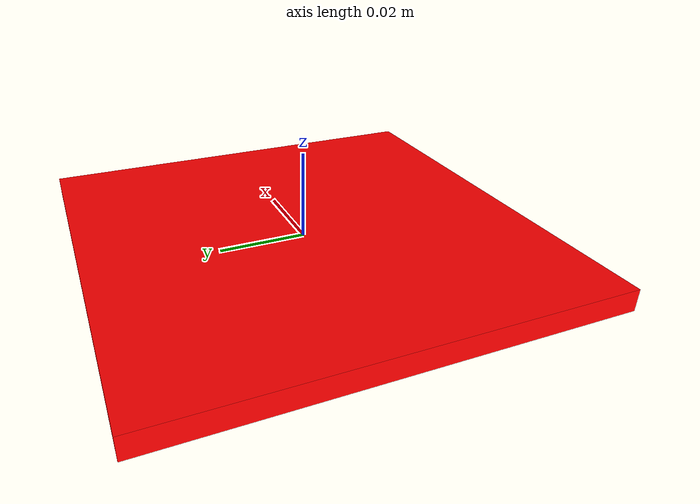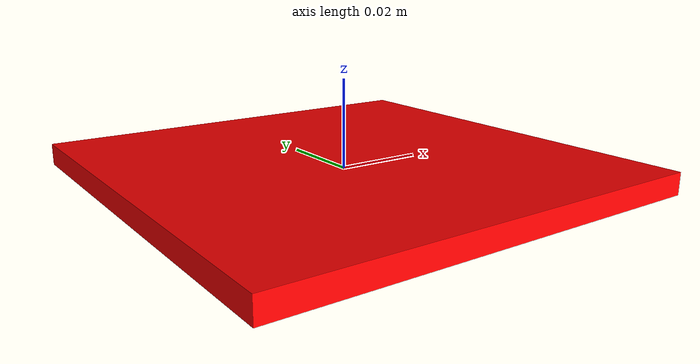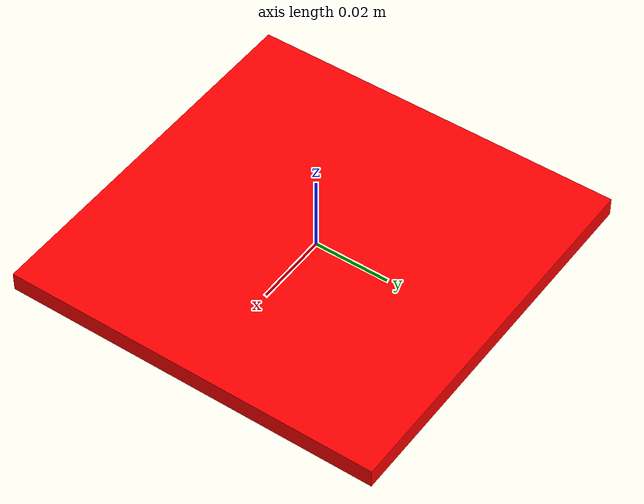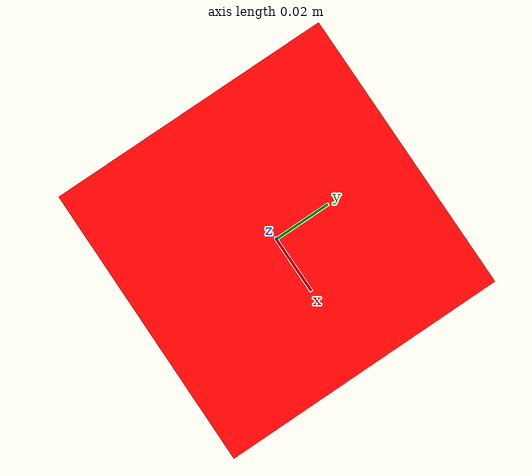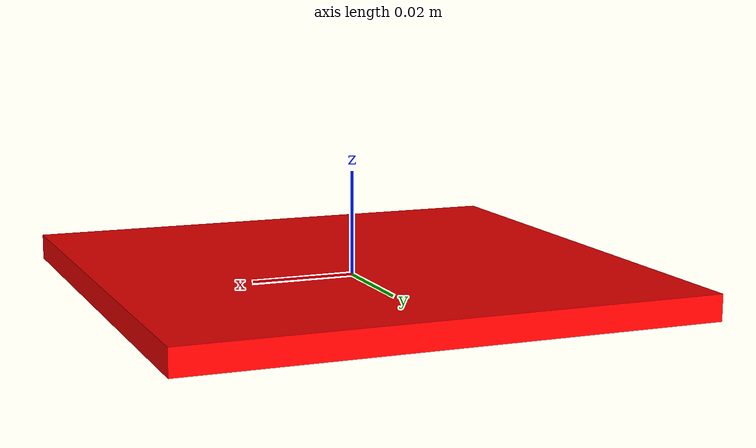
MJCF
<mujoco model="target_plate">
  <asset>
    <texture name="tex_plate" type="2d" builtin="flat" rgb1="1 0 0" width="512" height="512"/>
    <material name="mat_plate" texture="tex_plate"/>
  </asset>
  <worldbody>
    <body>
      <body name="object">
        <geom name="plate_geom" type="box" size="0.05 0.05 0.0025" material="mat_plate"
              density="5000" friction="1.0 0.005 0.0001" group="0"/>
        <geom name="plate_vis" type="box" size="0.05 0.05 0.0025" material="mat_plate"
              contype="0" conaffinity="0" group="1"/>

        <site name="bottom_site" pos="0 0 -0.0025" size="0.002" rgba="0 0 0 0"/>
        <site name="top_site" pos="0 0 0.0025" size="0.002" rgba="0 0 0 0"/>
      </body>
    </body>
  </worldbody>
</mujoco>
